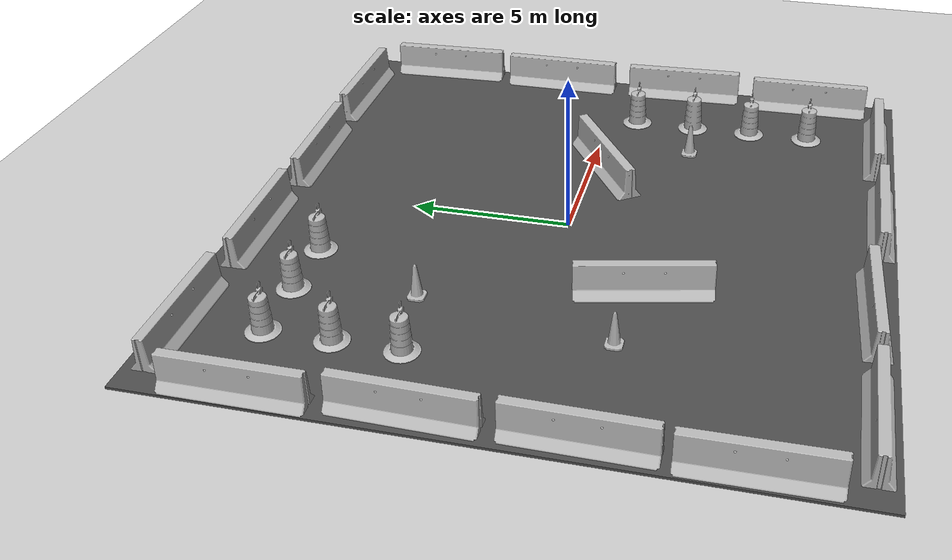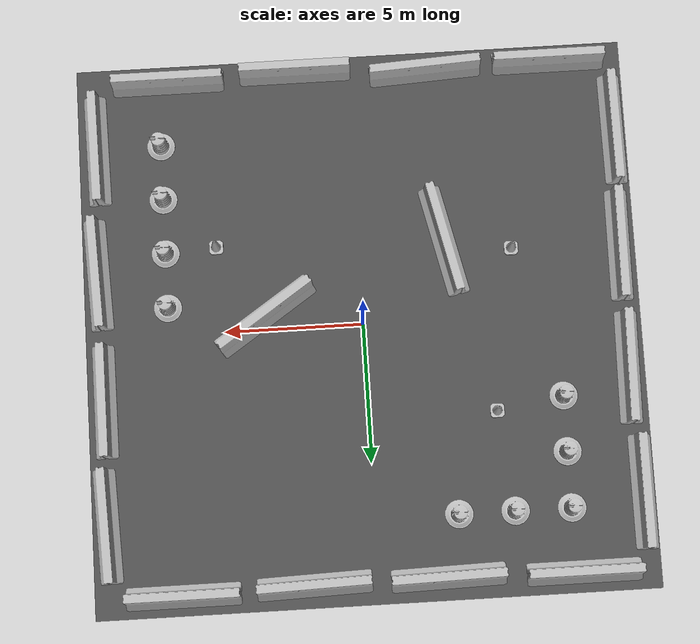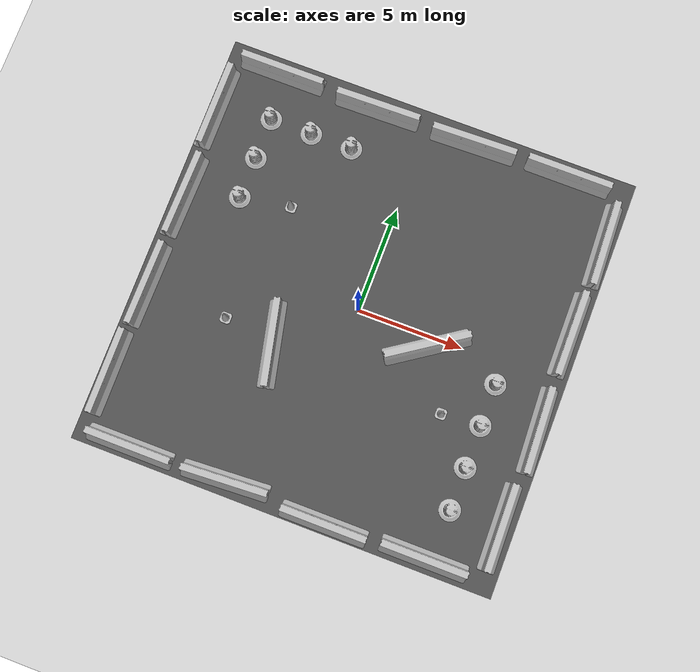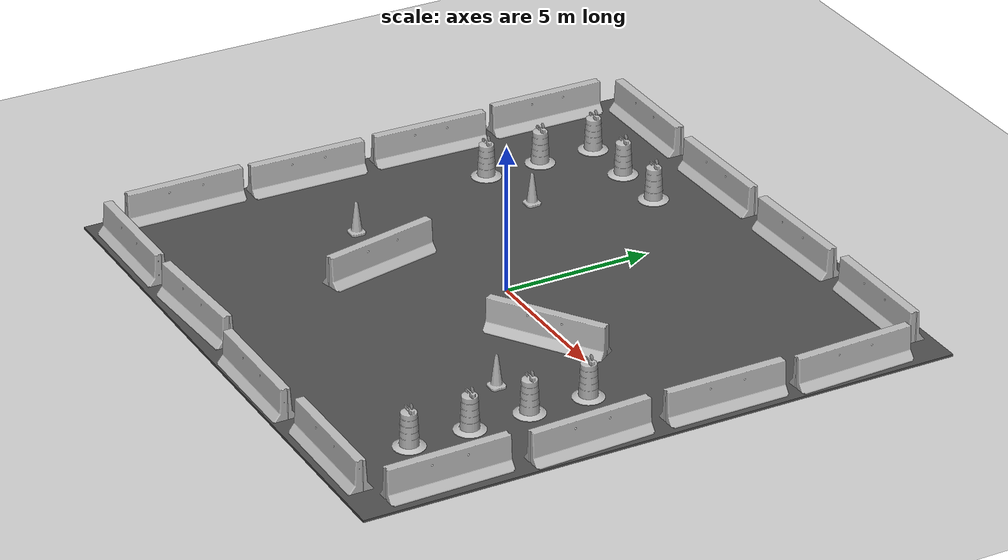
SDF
<sdf version="1.7">
 <world name="default">
  <light name="sun" type="directional">
   <pose>0 0 10 0 -0 0</pose>
   <diffuse>0.8 0.8 0.8 1</diffuse>
   <specular>0.2 0.2 0.2 1</specular>
   <attenuation>
    <range>1000</range>
    <constant>0.9</constant>
    <linear>0.01</linear>
    <quadratic>0.001</quadratic>
   </attenuation>
   <direction>-0.5 0.1 -0.9</direction>
   <spot><inner_angle>0</inner_angle><outer_angle>0</outer_angle><falloff>0</falloff></spot>
  </light>
  <model name="ground_plane">
   <static>1</static>
   <link name="link">
    <collision name="collision">
     <geometry><plane><normal>0 0 1</normal><size>100 100</size></plane></geometry>
     <surface>
      <contact><collide_bitmask>65535</collide_bitmask></contact>
      <friction><ode><mu>100</mu><mu2>50</mu2></ode></friction>
     </surface>
    </collision>
    <visual name="visual">
     <cast_shadows>0</cast_shadows>
     <geometry><plane><normal>0 0 1</normal><size>100 100</size></plane></geometry>
     <material>
      <script><uri>file://media/materials/scripts/gazebo.material</uri><name>Gazebo/Grey</name></script>
     </material>
    </visual>
   </link>
  </model>
  <gravity>0 0 -9.8</gravity>
  <magnetic_field>6e-06 2.3e-05 -4.2e-05</magnetic_field>
  <atmosphere type="adiabatic"/>
  <physics type="ode">
   <max_step_size>0.001</max_step_size>
   <real_time_factor>1</real_time_factor>
   <real_time_update_rate>1000</real_time_update_rate>
  </physics>
  <scene><ambient>0.4 0.4 0.4 1</ambient><background>0.7 0.7 0.7 1</background><shadows>1</shadows></scene>
  <spherical_coordinates>
   <surface_model>EARTH_WGS84</surface_model>
   <latitude_deg>0</latitude_deg>
   <longitude_deg>0</longitude_deg>
   <elevation>0</elevation>
   <heading_deg>0</heading_deg>
  </spherical_coordinates>
  <model name="asphalt_plane">
   <static>1</static>
   <link name="link">
    <collision name="collision"><geometry><box><size>20 20 0.1</size></box></geometry></collision>
    <visual name="visual">
     <cast_shadows>0</cast_shadows>
     <geometry><box><size>20 20 0.1</size></box></geometry>
     <material>
      <script>
       <uri>model://asphalt_plane/materials/scripts</uri>
       <uri>model://asphalt_plane/materials/textures</uri>
       <name>vrc/asphalt</name>
      </script>
     </material>
    </visual>
   </link>
  </model>
  <model name="Construction Barrel">
   <link name="link">
    <inertial>
     <pose>0 0 0.4 0 -0 0</pose>
     <mass>500</mass>
     <inertia><ixx>51.2096</ixx><iyy>51.2096</iyy><izz>25</izz><ixy>0</ixy><ixz>0</ixz><iyz>0</iyz></inertia>
    </inertial>
    <collision name="collision">
     <geometry><mesh><uri>model://construction_barrel/meshes/construction_barrel.dae</uri></mesh></geometry>
    </collision>
    <visual name="visual">
     <geometry><mesh><uri>model://construction_barrel/meshes/construction_barrel.dae</uri></mesh></geometry>
    </visual>
   </link>
   <pose>-7.00838 7.00471 0.05 0 -0 0.007974</pose>
  </model>
  <model name="Construction Barrel_0">
   <link name="link">
    <inertial>
     <pose>0 0 0.4 0 -0 0</pose>
     <mass>500</mass>
     <inertia><ixx>51.2096</ixx><iyy>51.2096</iyy><izz>25</izz><ixy>0</ixy><ixz>0</ixz><iyz>0</iyz></inertia>
    </inertial>
    <collision name="collision">
     <geometry><mesh><uri>model://construction_barrel/meshes/construction_barrel.dae</uri></mesh></geometry>
    </collision>
    <visual name="visual">
     <geometry><mesh><uri>model://construction_barrel/meshes/construction_barrel.dae</uri></mesh></geometry>
    </visual>
   </link>
   <pose>-4.99969 7.00097 0.049999 4e-06 -0 0.000445</pose>
  </model>
  <model name="Construction Barrel_1">
   <link name="link">
    <inertial>
     <pose>0 0 0.4 0 -0 0</pose>
     <mass>500</mass>
     <inertia><ixx>51.2096</ixx><iyy>51.2096</iyy><izz>25</izz><ixy>0</ixy><ixz>0</ixz><iyz>0</iyz></inertia>
    </inertial>
    <collision name="collision">
     <geometry><mesh><uri>model://construction_barrel/meshes/construction_barrel.dae</uri></mesh></geometry>
    </collision>
    <visual name="visual">
     <geometry><mesh><uri>model://construction_barrel/meshes/construction_barrel.dae</uri></mesh></geometry>
    </visual>
   </link>
   <pose>-2.99884 7.00023 0.049999 -1e-06 -2e-06 0.000576</pose>
  </model>
  <model name="Construction Barrel_2">
   <link name="link">
    <inertial>
     <pose>0 0 0.4 0 -0 0</pose>
     <mass>500</mass>
     <inertia><ixx>51.2096</ixx><iyy>51.2096</iyy><izz>25</izz><ixy>0</ixy><ixz>0</ixz><iyz>0</iyz></inertia>
    </inertial>
    <collision name="collision">
     <geometry><mesh><uri>model://construction_barrel/meshes/construction_barrel.dae</uri></mesh></geometry>
    </collision>
    <visual name="visual">
     <geometry><mesh><uri>model://construction_barrel/meshes/construction_barrel.dae</uri></mesh></geometry>
    </visual>
   </link>
   <pose>-6.99968 5.00023 0.05 0 -0 0.000794</pose>
  </model>
  <model name="Construction Barrel_3">
   <link name="link">
    <inertial>
     <pose>0 0 0.4 0 -0 0</pose>
     <mass>500</mass>
     <inertia><ixx>51.2096</ixx><iyy>51.2096</iyy><izz>25</izz><ixy>0</ixy><ixz>0</ixz><iyz>0</iyz></inertia>
    </inertial>
    <collision name="collision">
     <geometry><mesh><uri>model://construction_barrel/meshes/construction_barrel.dae</uri></mesh></geometry>
    </collision>
    <visual name="visual">
     <geometry><mesh><uri>model://construction_barrel/meshes/construction_barrel.dae</uri></mesh></geometry>
    </visual>
   </link>
   <pose>-7.00875 2.99945 0.049999 -2e-06 -3e-06 0.005725</pose>
  </model>
  <model name="Construction Cone">
   <link name="link">
    <collision name="collision">
     <geometry>
      <mesh><scale>10 10 10</scale><uri>model://construction_cone/meshes/construction_cone.dae</uri></mesh>
     </geometry>
    </collision>
    <visual name="visual">
     <geometry>
      <mesh><scale>10 10 10</scale><uri>model://construction_cone/meshes/construction_cone.dae</uri></mesh>
     </geometry>
    </visual>
    <inertial>
     <inertia><ixx>1</ixx><ixy>0</ixy><ixz>0</ixz><iyy>1</iyy><iyz>0</iyz><izz>1</izz></inertia>
     <mass>1</mass>
    </inertial>
   </link>
   <pose>-4.60699 3.39982 0.05 -1e-06 -0 -0</pose>
  </model>
  <model name="Construction Cone_0">
   <link name="link">
    <collision name="collision">
     <geometry>
      <mesh><scale>10 10 10</scale><uri>model://construction_cone/meshes/construction_cone.dae</uri></mesh>
     </geometry>
    </collision>
    <visual name="visual">
     <geometry>
      <mesh><scale>10 10 10</scale><uri>model://construction_cone/meshes/construction_cone.dae</uri></mesh>
     </geometry>
    </visual>
    <inertial>
     <inertia><ixx>1</ixx><ixy>0</ixy><ixz>0</ixz><iyy>1</iyy><iyz>0</iyz><izz>1</izz></inertia>
     <mass>1</mass>
    </inertial>
   </link>
   <pose>-5.51374 -2.4831 0.050001 -3e-06 -1e-06 -0</pose>
  </model>
  <model name="Construction Cone_1">
   <link name="link">
    <collision name="collision">
     <geometry>
      <mesh><scale>10 10 10</scale><uri>model://construction_cone/meshes/construction_cone.dae</uri></mesh>
     </geometry>
    </collision>
    <visual name="visual">
     <geometry>
      <mesh><scale>10 10 10</scale><uri>model://construction_cone/meshes/construction_cone.dae</uri></mesh>
     </geometry>
    </visual>
    <inertial>
     <inertia><ixx>1</ixx><ixy>0</ixy><ixz>0</ixz><iyy>1</iyy><iyz>0</iyz><izz>1</izz></inertia>
     <mass>1</mass>
    </inertial>
   </link>
   <pose>5.15815 -3.12227 0.05 0 -0 0</pose>
  </model>
  <model name="jersey_barrier">
   <static>1</static>
   <link name="link">
    <visual name="visual">
     <geometry><mesh><uri>model://jersey_barrier/meshes/jersey_barrier.dae</uri></mesh></geometry>
    </visual>
    <collision name="upright">
     <pose>0 0 0.5715 0 -0 0</pose>
     <geometry><box><size>4.06542 0.3063 1.143</size></box></geometry>
    </collision>
    <collision name="base">
     <pose>0 0 0.032258 0 -0 0</pose>
     <geometry><box><size>4.06542 0.8107 0.064516</size></box></geometry>
    </collision>
    <collision name="base2">
     <pose>0 0 0.1 0 -0 0</pose>
     <geometry><box><size>4.06542 0.65 0.1</size></box></geometry>
    </collision>
    <collision name="base3">
     <pose>0 0 0.2 0 -0 0</pose>
     <geometry><box><size>4.06542 0.5 0.1</size></box></geometry>
    </collision>
    <collision name="left-angle">
     <pose>0 -0.224 0.2401 0.9 -0 0</pose>
     <geometry><box><size>4.06542 0.5 0.064516</size></box></geometry>
    </collision>
    <collision name="right-angle">
     <pose>0 0.224 0.2401 -0.9 0 0</pose>
     <geometry><box><size>4.06542 0.5 0.064516</size></box></geometry>
    </collision>
   </link>
   <pose>-7.26503 9.276 0 0 -0 0</pose>
  </model>
  <model name="jersey_barrier_0">
   <static>1</static>
   <link name="link">
    <visual name="visual">
     <geometry><mesh><uri>model://jersey_barrier/meshes/jersey_barrier.dae</uri></mesh></geometry>
    </visual>
    <collision name="upright">
     <pose>0 0 0.5715 0 -0 0</pose>
     <geometry><box><size>4.06542 0.3063 1.143</size></box></geometry>
    </collision>
    <collision name="base">
     <pose>0 0 0.032258 0 -0 0</pose>
     <geometry><box><size>4.06542 0.8107 0.064516</size></box></geometry>
    </collision>
    <collision name="base2">
     <pose>0 0 0.1 0 -0 0</pose>
     <geometry><box><size>4.06542 0.65 0.1</size></box></geometry>
    </collision>
    <collision name="base3">
     <pose>0 0 0.2 0 -0 0</pose>
     <geometry><box><size>4.06542 0.5 0.1</size></box></geometry>
    </collision>
    <collision name="left-angle">
     <pose>0 -0.224 0.2401 0.9 -0 0</pose>
     <geometry><box><size>4.06542 0.5 0.064516</size></box></geometry>
    </collision>
    <collision name="right-angle">
     <pose>0 0.224 0.2401 -0.9 0 0</pose>
     <geometry><box><size>4.06542 0.5 0.064516</size></box></geometry>
    </collision>
   </link>
   <pose>-2.48007 9.18909 0 0 -0 0.019586</pose>
  </model>
  <model name="jersey_barrier_1">
   <static>1</static>
   <link name="link">
    <visual name="visual">
     <geometry><mesh><uri>model://jersey_barrier/meshes/jersey_barrier.dae</uri></mesh></geometry>
    </visual>
    <collision name="upright">
     <pose>0 0 0.5715 0 -0 0</pose>
     <geometry><box><size>4.06542 0.3063 1.143</size></box></geometry>
    </collision>
    <collision name="base">
     <pose>0 0 0.032258 0 -0 0</pose>
     <geometry><box><size>4.06542 0.8107 0.064516</size></box></geometry>
    </collision>
    <collision name="base2">
     <pose>0 0 0.1 0 -0 0</pose>
     <geometry><box><size>4.06542 0.65 0.1</size></box></geometry>
    </collision>
    <collision name="base3">
     <pose>0 0 0.2 0 -0 0</pose>
     <geometry><box><size>4.06542 0.5 0.1</size></box></geometry>
    </collision>
    <collision name="left-angle">
     <pose>0 -0.224 0.2401 0.9 -0 0</pose>
     <geometry><box><size>4.06542 0.5 0.064516</size></box></geometry>
    </collision>
    <collision name="right-angle">
     <pose>0 0.224 0.2401 -0.9 0 0</pose>
     <geometry><box><size>4.06542 0.5 0.064516</size></box></geometry>
    </collision>
   </link>
   <pose>2.24313 9.19524 0 0 -0 0.027384</pose>
  </model>
  <model name="jersey_barrier_2">
   <static>1</static>
   <link name="link">
    <visual name="visual">
     <geometry><mesh><uri>model://jersey_barrier/meshes/jersey_barrier.dae</uri></mesh></geometry>
    </visual>
    <collision name="upright">
     <pose>0 0 0.5715 0 -0 0</pose>
     <geometry><box><size>4.06542 0.3063 1.143</size></box></geometry>
    </collision>
    <collision name="base">
     <pose>0 0 0.032258 0 -0 0</pose>
     <geometry><box><size>4.06542 0.8107 0.064516</size></box></geometry>
    </collision>
    <collision name="base2">
     <pose>0 0 0.1 0 -0 0</pose>
     <geometry><box><size>4.06542 0.65 0.1</size></box></geometry>
    </collision>
    <collision name="base3">
     <pose>0 0 0.2 0 -0 0</pose>
     <geometry><box><size>4.06542 0.5 0.1</size></box></geometry>
    </collision>
    <collision name="left-angle">
     <pose>0 -0.224 0.2401 0.9 -0 0</pose>
     <geometry><box><size>4.06542 0.5 0.064516</size></box></geometry>
    </collision>
    <collision name="right-angle">
     <pose>0 0.224 0.2401 -0.9 0 0</pose>
     <geometry><box><size>4.06542 0.5 0.064516</size></box></geometry>
    </collision>
   </link>
   <pose>6.85877 9.30855 0 0 -0 0</pose>
  </model>
  <model name="jersey_barrier_3">
   <static>1</static>
   <link name="link">
    <visual name="visual">
     <geometry><mesh><uri>model://jersey_barrier/meshes/jersey_barrier.dae</uri></mesh></geometry>
    </visual>
    <collision name="upright">
     <pose>0 0 0.5715 0 -0 0</pose>
     <geometry><box><size>4.06542 0.3063 1.143</size></box></geometry>
    </collision>
    <collision name="base">
     <pose>0 0 0.032258 0 -0 0</pose>
     <geometry><box><size>4.06542 0.8107 0.064516</size></box></geometry>
    </collision>
    <collision name="base2">
     <pose>0 0 0.1 0 -0 0</pose>
     <geometry><box><size>4.06542 0.65 0.1</size></box></geometry>
    </collision>
    <collision name="base3">
     <pose>0 0 0.2 0 -0 0</pose>
     <geometry><box><size>4.06542 0.5 0.1</size></box></geometry>
    </collision>
    <collision name="left-angle">
     <pose>0 -0.224 0.2401 0.9 -0 0</pose>
     <geometry><box><size>4.06542 0.5 0.064516</size></box></geometry>
    </collision>
    <collision name="right-angle">
     <pose>0 0.224 0.2401 -0.9 0 0</pose>
     <geometry><box><size>4.06542 0.5 0.064516</size></box></geometry>
    </collision>
   </link>
   <pose>-7.33435 -9.40905 0 0 -0 0</pose>
  </model>
  <model name="jersey_barrier_4">
   <static>1</static>
   <link name="link">
    <visual name="visual">
     <geometry><mesh><uri>model://jersey_barrier/meshes/jersey_barrier.dae</uri></mesh></geometry>
    </visual>
    <collision name="upright">
     <pose>0 0 0.5715 0 -0 0</pose>
     <geometry><box><size>4.06542 0.3063 1.143</size></box></geometry>
    </collision>
    <collision name="base">
     <pose>0 0 0.032258 0 -0 0</pose>
     <geometry><box><size>4.06542 0.8107 0.064516</size></box></geometry>
    </collision>
    <collision name="base2">
     <pose>0 0 0.1 0 -0 0</pose>
     <geometry><box><size>4.06542 0.65 0.1</size></box></geometry>
    </collision>
    <collision name="base3">
     <pose>0 0 0.2 0 -0 0</pose>
     <geometry><box><size>4.06542 0.5 0.1</size></box></geometry>
    </collision>
    <collision name="left-angle">
     <pose>0 -0.224 0.2401 0.9 -0 0</pose>
     <geometry><box><size>4.06542 0.5 0.064516</size></box></geometry>
    </collision>
    <collision name="right-angle">
     <pose>0 0.224 0.2401 -0.9 0 0</pose>
     <geometry><box><size>4.06542 0.5 0.064516</size></box></geometry>
    </collision>
   </link>
   <pose>-2.78805 -9.30705 0 0 -0 0.054466</pose>
  </model>
  <model name="jersey_barrier_5">
   <static>1</static>
   <link name="link">
    <visual name="visual">
     <geometry><mesh><uri>model://jersey_barrier/meshes/jersey_barrier.dae</uri></mesh></geometry>
    </visual>
    <collision name="upright">
     <pose>0 0 0.5715 0 -0 0</pose>
     <geometry><box><size>4.06542 0.3063 1.143</size></box></geometry>
    </collision>
    <collision name="base">
     <pose>0 0 0.032258 0 -0 0</pose>
     <geometry><box><size>4.06542 0.8107 0.064516</size></box></geometry>
    </collision>
    <collision name="base2">
     <pose>0 0 0.1 0 -0 0</pose>
     <geometry><box><size>4.06542 0.65 0.1</size></box></geometry>
    </collision>
    <collision name="base3">
     <pose>0 0 0.2 0 -0 0</pose>
     <geometry><box><size>4.06542 0.5 0.1</size></box></geometry>
    </collision>
    <collision name="left-angle">
     <pose>0 -0.224 0.2401 0.9 -0 0</pose>
     <geometry><box><size>4.06542 0.5 0.064516</size></box></geometry>
    </collision>
    <collision name="right-angle">
     <pose>0 0.224 0.2401 -0.9 0 0</pose>
     <geometry><box><size>4.06542 0.5 0.064516</size></box></geometry>
    </collision>
   </link>
   <pose>1.971 -9.53265 0 0 -0 0</pose>
  </model>
  <model name="jersey_barrier_6">
   <static>1</static>
   <link name="link">
    <visual name="visual">
     <geometry><mesh><uri>model://jersey_barrier/meshes/jersey_barrier.dae</uri></mesh></geometry>
    </visual>
    <collision name="upright">
     <pose>0 0 0.5715 0 -0 0</pose>
     <geometry><box><size>4.06542 0.3063 1.143</size></box></geometry>
    </collision>
    <collision name="base">
     <pose>0 0 0.032258 0 -0 0</pose>
     <geometry><box><size>4.06542 0.8107 0.064516</size></box></geometry>
    </collision>
    <collision name="base2">
     <pose>0 0 0.1 0 -0 0</pose>
     <geometry><box><size>4.06542 0.65 0.1</size></box></geometry>
    </collision>
    <collision name="base3">
     <pose>0 0 0.2 0 -0 0</pose>
     <geometry><box><size>4.06542 0.5 0.1</size></box></geometry>
    </collision>
    <collision name="left-angle">
     <pose>0 -0.224 0.2401 0.9 -0 0</pose>
     <geometry><box><size>4.06542 0.5 0.064516</size></box></geometry>
    </collision>
    <collision name="right-angle">
     <pose>0 0.224 0.2401 -0.9 0 0</pose>
     <geometry><box><size>4.06542 0.5 0.064516</size></box></geometry>
    </collision>
   </link>
   <pose>6.6292 -9.37845 0 0 -0 0</pose>
  </model>
  <model name="jersey_barrier_7">
   <static>1</static>
   <link name="link">
    <visual name="visual">
     <geometry><mesh><uri>model://jersey_barrier/meshes/jersey_barrier.dae</uri></mesh></geometry>
    </visual>
    <collision name="upright">
     <pose>0 0 0.5715 0 -0 0</pose>
     <geometry><box><size>4.06542 0.3063 1.143</size></box></geometry>
    </collision>
    <collision name="base">
     <pose>0 0 0.032258 0 -0 0</pose>
     <geometry><box><size>4.06542 0.8107 0.064516</size></box></geometry>
    </collision>
    <collision name="base2">
     <pose>0 0 0.1 0 -0 0</pose>
     <geometry><box><size>4.06542 0.65 0.1</size></box></geometry>
    </collision>
    <collision name="base3">
     <pose>0 0 0.2 0 -0 0</pose>
     <geometry><box><size>4.06542 0.5 0.1</size></box></geometry>
    </collision>
    <collision name="left-angle">
     <pose>0 -0.224 0.2401 0.9 -0 0</pose>
     <geometry><box><size>4.06542 0.5 0.064516</size></box></geometry>
    </collision>
    <collision name="right-angle">
     <pose>0 0.224 0.2401 -0.9 0 0</pose>
     <geometry><box><size>4.06542 0.5 0.064516</size></box></geometry>
    </collision>
   </link>
   <pose>-9.57251 6.59267 0 0 -0 1.57</pose>
  </model>
  <model name="Construction Barrel_4">
   <link name="link">
    <inertial>
     <pose>0 0 0.4 0 -0 0</pose>
     <mass>500</mass>
     <inertia><ixx>51.2096</ixx><iyy>51.2096</iyy><izz>25</izz><ixy>0</ixy><ixz>0</ixz><iyz>0</iyz></inertia>
    </inertial>
    <collision name="collision">
     <geometry><mesh><uri>model://construction_barrel/meshes/construction_barrel.dae</uri></mesh></geometry>
    </collision>
    <visual name="visual">
     <geometry><mesh><uri>model://construction_barrel/meshes/construction_barrel.dae</uri></mesh></geometry>
    </visual>
   </link>
   <pose>7.00022 -7.00121 0.049999 -1e-06 -2e-06 -0.001417</pose>
  </model>
  <model name="Construction Barrel_5">
   <link name="link">
    <inertial>
     <pose>0 0 0.4 0 -0 0</pose>
     <mass>500</mass>
     <inertia><ixx>51.2096</ixx><iyy>51.2096</iyy><izz>25</izz><ixy>0</ixy><ixz>0</ixz><iyz>0</iyz></inertia>
    </inertial>
    <collision name="collision">
     <geometry><mesh><uri>model://construction_barrel/meshes/construction_barrel.dae</uri></mesh></geometry>
    </collision>
    <visual name="visual">
     <geometry><mesh><uri>model://construction_barrel/meshes/construction_barrel.dae</uri></mesh></geometry>
    </visual>
   </link>
   <pose>7.00023 -4.99897 0.049999 4e-06 -0 0.000313</pose>
  </model>
  <model name="Construction Barrel_6">
   <link name="link">
    <inertial>
     <pose>0 0 0.4 0 -0 0</pose>
     <mass>500</mass>
     <inertia><ixx>51.2096</ixx><iyy>51.2096</iyy><izz>25</izz><ixy>0</ixy><ixz>0</ixz><iyz>0</iyz></inertia>
    </inertial>
    <collision name="collision">
     <geometry><mesh><uri>model://construction_barrel/meshes/construction_barrel.dae</uri></mesh></geometry>
    </collision>
    <visual name="visual">
     <geometry><mesh><uri>model://construction_barrel/meshes/construction_barrel.dae</uri></mesh></geometry>
    </visual>
   </link>
   <pose>7.00023 -2.99908 0.049999 4e-06 -0 0.000435</pose>
  </model>
  <model name="Construction Barrel_7">
   <link name="link">
    <inertial>
     <pose>0 0 0.4 0 -0 0</pose>
     <mass>500</mass>
     <inertia><ixx>51.2096</ixx><iyy>51.2096</iyy><izz>25</izz><ixy>0</ixy><ixz>0</ixz><iyz>0</iyz></inertia>
    </inertial>
    <collision name="collision">
     <geometry><mesh><uri>model://construction_barrel/meshes/construction_barrel.dae</uri></mesh></geometry>
    </collision>
    <visual name="visual">
     <geometry><mesh><uri>model://construction_barrel/meshes/construction_barrel.dae</uri></mesh></geometry>
    </visual>
   </link>
   <pose>7.00023 -0.999825 0.049999 -1e-06 -3e-06 0.00044</pose>
  </model>
  <model name="jersey_barrier_8">
   <static>1</static>
   <link name="link">
    <visual name="visual">
     <geometry><mesh><uri>model://jersey_barrier/meshes/jersey_barrier.dae</uri></mesh></geometry>
    </visual>
    <collision name="upright">
     <pose>0 0 0.5715 0 -0 0</pose>
     <geometry><box><size>4.06542 0.3063 1.143</size></box></geometry>
    </collision>
    <collision name="base">
     <pose>0 0 0.032258 0 -0 0</pose>
     <geometry><box><size>4.06542 0.8107 0.064516</size></box></geometry>
    </collision>
    <collision name="base2">
     <pose>0 0 0.1 0 -0 0</pose>
     <geometry><box><size>4.06542 0.65 0.1</size></box></geometry>
    </collision>
    <collision name="base3">
     <pose>0 0 0.2 0 -0 0</pose>
     <geometry><box><size>4.06542 0.5 0.1</size></box></geometry>
    </collision>
    <collision name="left-angle">
     <pose>0 -0.224 0.2401 0.9 -0 0</pose>
     <geometry><box><size>4.06542 0.5 0.064516</size></box></geometry>
    </collision>
    <collision name="right-angle">
     <pose>0 0.224 0.2401 -0.9 0 0</pose>
     <geometry><box><size>4.06542 0.5 0.064516</size></box></geometry>
    </collision>
   </link>
   <pose>-3.09873 -2.87449 0 0 -0 1.7912</pose>
  </model>
  <model name="jersey_barrier_9">
   <static>1</static>
   <link name="link">
    <visual name="visual">
     <geometry><mesh><uri>model://jersey_barrier/meshes/jersey_barrier.dae</uri></mesh></geometry>
    </visual>
    <collision name="upright">
     <pose>0 0 0.5715 0 -0 0</pose>
     <geometry><box><size>4.06542 0.3063 1.143</size></box></geometry>
    </collision>
    <collision name="base">
     <pose>0 0 0.032258 0 -0 0</pose>
     <geometry><box><size>4.06542 0.8107 0.064516</size></box></geometry>
    </collision>
    <collision name="base2">
     <pose>0 0 0.1 0 -0 0</pose>
     <geometry><box><size>4.06542 0.65 0.1</size></box></geometry>
    </collision>
    <collision name="base3">
     <pose>0 0 0.2 0 -0 0</pose>
     <geometry><box><size>4.06542 0.5 0.1</size></box></geometry>
    </collision>
    <collision name="left-angle">
     <pose>0 -0.224 0.2401 0.9 -0 0</pose>
     <geometry><box><size>4.06542 0.5 0.064516</size></box></geometry>
    </collision>
    <collision name="right-angle">
     <pose>0 0.224 0.2401 -0.9 0 0</pose>
     <geometry><box><size>4.06542 0.5 0.064516</size></box></geometry>
    </collision>
   </link>
   <pose>3.51112 -0.500796 0 0 -0 0.594606</pose>
  </model>
  <model name="jersey_barrier_10">
   <static>1</static>
   <link name="link">
    <visual name="visual">
     <geometry><mesh><uri>model://jersey_barrier/meshes/jersey_barrier.dae</uri></mesh></geometry>
    </visual>
    <collision name="upright">
     <pose>0 0 0.5715 0 -0 0</pose>
     <geometry><box><size>4.06542 0.3063 1.143</size></box></geometry>
    </collision>
    <collision name="base">
     <pose>0 0 0.032258 0 -0 0</pose>
     <geometry><box><size>4.06542 0.8107 0.064516</size></box></geometry>
    </collision>
    <collision name="base2">
     <pose>0 0 0.1 0 -0 0</pose>
     <geometry><box><size>4.06542 0.65 0.1</size></box></geometry>
    </collision>
    <collision name="base3">
     <pose>0 0 0.2 0 -0 0</pose>
     <geometry><box><size>4.06542 0.5 0.1</size></box></geometry>
    </collision>
    <collision name="left-angle">
     <pose>0 -0.224 0.2401 0.9 -0 0</pose>
     <geometry><box><size>4.06542 0.5 0.064516</size></box></geometry>
    </collision>
    <collision name="right-angle">
     <pose>0 0.224 0.2401 -0.9 0 0</pose>
     <geometry><box><size>4.06542 0.5 0.064516</size></box></geometry>
    </collision>
   </link>
   <pose>-9.40805 2.12992 -0 0 -0 1.5506</pose>
  </model>
  <model name="jersey_barrier_11">
   <static>1</static>
   <link name="link">
    <visual name="visual">
     <geometry><mesh><uri>model://jersey_barrier/meshes/jersey_barrier.dae</uri></mesh></geometry>
    </visual>
    <collision name="upright">
     <pose>0 0 0.5715 0 -0 0</pose>
     <geometry><box><size>4.06542 0.3063 1.143</size></box></geometry>
    </collision>
    <collision name="base">
     <pose>0 0 0.032258 0 -0 0</pose>
     <geometry><box><size>4.06542 0.8107 0.064516</size></box></geometry>
    </collision>
    <collision name="base2">
     <pose>0 0 0.1 0 -0 0</pose>
     <geometry><box><size>4.06542 0.65 0.1</size></box></geometry>
    </collision>
    <collision name="base3">
     <pose>0 0 0.2 0 -0 0</pose>
     <geometry><box><size>4.06542 0.5 0.1</size></box></geometry>
    </collision>
    <collision name="left-angle">
     <pose>0 -0.224 0.2401 0.9 -0 0</pose>
     <geometry><box><size>4.06542 0.5 0.064516</size></box></geometry>
    </collision>
    <collision name="right-angle">
     <pose>0 0.224 0.2401 -0.9 0 0</pose>
     <geometry><box><size>4.06542 0.5 0.064516</size></box></geometry>
    </collision>
   </link>
   <pose>-9.53608 -6.6625 0 0 -0 1.57757</pose>
  </model>
  <model name="jersey_barrier_12">
   <static>1</static>
   <link name="link">
    <visual name="visual">
     <geometry><mesh><uri>model://jersey_barrier/meshes/jersey_barrier.dae</uri></mesh></geometry>
    </visual>
    <collision name="upright">
     <pose>0 0 0.5715 0 -0 0</pose>
     <geometry><box><size>4.06542 0.3063 1.143</size></box></geometry>
    </collision>
    <collision name="base">
     <pose>0 0 0.032258 0 -0 0</pose>
     <geometry><box><size>4.06542 0.8107 0.064516</size></box></geometry>
    </collision>
    <collision name="base2">
     <pose>0 0 0.1 0 -0 0</pose>
     <geometry><box><size>4.06542 0.65 0.1</size></box></geometry>
    </collision>
    <collision name="base3">
     <pose>0 0 0.2 0 -0 0</pose>
     <geometry><box><size>4.06542 0.5 0.1</size></box></geometry>
    </collision>
    <collision name="left-angle">
     <pose>0 -0.224 0.2401 0.9 -0 0</pose>
     <geometry><box><size>4.06542 0.5 0.064516</size></box></geometry>
    </collision>
    <collision name="right-angle">
     <pose>0 0.224 0.2401 -0.9 0 0</pose>
     <geometry><box><size>4.06542 0.5 0.064516</size></box></geometry>
    </collision>
   </link>
   <pose>-9.42397 -2.34463 0 0 -0 1.55953</pose>
  </model>
  <model name="jersey_barrier_13">
   <static>1</static>
   <link name="link">
    <visual name="visual">
     <geometry><mesh><uri>model://jersey_barrier/meshes/jersey_barrier.dae</uri></mesh></geometry>
    </visual>
    <collision name="upright">
     <pose>0 0 0.5715 0 -0 0</pose>
     <geometry><box><size>4.06542 0.3063 1.143</size></box></geometry>
    </collision>
    <collision name="base">
     <pose>0 0 0.032258 0 -0 0</pose>
     <geometry><box><size>4.06542 0.8107 0.064516</size></box></geometry>
    </collision>
    <collision name="base2">
     <pose>0 0 0.1 0 -0 0</pose>
     <geometry><box><size>4.06542 0.65 0.1</size></box></geometry>
    </collision>
    <collision name="base3">
     <pose>0 0 0.2 0 -0 0</pose>
     <geometry><box><size>4.06542 0.5 0.1</size></box></geometry>
    </collision>
    <collision name="left-angle">
     <pose>0 -0.224 0.2401 0.9 -0 0</pose>
     <geometry><box><size>4.06542 0.5 0.064516</size></box></geometry>
    </collision>
    <collision name="right-angle">
     <pose>0 0.224 0.2401 -0.9 0 0</pose>
     <geometry><box><size>4.06542 0.5 0.064516</size></box></geometry>
    </collision>
   </link>
   <pose>9.32578 -6.94026 0 0 -0 1.58988</pose>
  </model>
  <model name="jersey_barrier_14">
   <static>1</static>
   <link name="link">
    <visual name="visual">
     <geometry><mesh><uri>model://jersey_barrier/meshes/jersey_barrier.dae</uri></mesh></geometry>
    </visual>
    <collision name="upright">
     <pose>0 0 0.5715 0 -0 0</pose>
     <geometry><box><size>4.06542 0.3063 1.143</size></box></geometry>
    </collision>
    <collision name="base">
     <pose>0 0 0.032258 0 -0 0</pose>
     <geometry><box><size>4.06542 0.8107 0.064516</size></box></geometry>
    </collision>
    <collision name="base2">
     <pose>0 0 0.1 0 -0 0</pose>
     <geometry><box><size>4.06542 0.65 0.1</size></box></geometry>
    </collision>
    <collision name="base3">
     <pose>0 0 0.2 0 -0 0</pose>
     <geometry><box><size>4.06542 0.5 0.1</size></box></geometry>
    </collision>
    <collision name="left-angle">
     <pose>0 -0.224 0.2401 0.9 -0 0</pose>
     <geometry><box><size>4.06542 0.5 0.064516</size></box></geometry>
    </collision>
    <collision name="right-angle">
     <pose>0 0.224 0.2401 -0.9 0 0</pose>
     <geometry><box><size>4.06542 0.5 0.064516</size></box></geometry>
    </collision>
   </link>
   <pose>9.46084 -2.33173 0 0 -0 1.61517</pose>
  </model>
  <model name="jersey_barrier_15">
   <static>1</static>
   <link name="link">
    <visual name="visual">
     <geometry><mesh><uri>model://jersey_barrier/meshes/jersey_barrier.dae</uri></mesh></geometry>
    </visual>
    <collision name="upright">
     <pose>0 0 0.5715 0 -0 0</pose>
     <geometry><box><size>4.06542 0.3063 1.143</size></box></geometry>
    </collision>
    <collision name="base">
     <pose>0 0 0.032258 0 -0 0</pose>
     <geometry><box><size>4.06542 0.8107 0.064516</size></box></geometry>
    </collision>
    <collision name="base2">
     <pose>0 0 0.1 0 -0 0</pose>
     <geometry><box><size>4.06542 0.65 0.1</size></box></geometry>
    </collision>
    <collision name="base3">
     <pose>0 0 0.2 0 -0 0</pose>
     <geometry><box><size>4.06542 0.5 0.1</size></box></geometry>
    </collision>
    <collision name="left-angle">
     <pose>0 -0.224 0.2401 0.9 -0 0</pose>
     <geometry><box><size>4.06542 0.5 0.064516</size></box></geometry>
    </collision>
    <collision name="right-angle">
     <pose>0 0.224 0.2401 -0.9 0 0</pose>
     <geometry><box><size>4.06542 0.5 0.064516</size></box></geometry>
    </collision>
   </link>
   <pose>9.38144 2.28847 0 0 -0 1.57591</pose>
  </model>
  <model name="jersey_barrier_16">
   <static>1</static>
   <link name="link">
    <visual name="visual">
     <geometry><mesh><uri>model://jersey_barrier/meshes/jersey_barrier.dae</uri></mesh></geometry>
    </visual>
    <collision name="upright">
     <pose>0 0 0.5715 0 -0 0</pose>
     <geometry><box><size>4.06542 0.3063 1.143</size></box></geometry>
    </collision>
    <collision name="base">
     <pose>0 0 0.032258 0 -0 0</pose>
     <geometry><box><size>4.06542 0.8107 0.064516</size></box></geometry>
    </collision>
    <collision name="base2">
     <pose>0 0 0.1 0 -0 0</pose>
     <geometry><box><size>4.06542 0.65 0.1</size></box></geometry>
    </collision>
    <collision name="base3">
     <pose>0 0 0.2 0 -0 0</pose>
     <geometry><box><size>4.06542 0.5 0.1</size></box></geometry>
    </collision>
    <collision name="left-angle">
     <pose>0 -0.224 0.2401 0.9 -0 0</pose>
     <geometry><box><size>4.06542 0.5 0.064516</size></box></geometry>
    </collision>
    <collision name="right-angle">
     <pose>0 0.224 0.2401 -0.9 0 0</pose>
     <geometry><box><size>4.06542 0.5 0.064516</size></box></geometry>
    </collision>
   </link>
   <pose>9.44796 6.71399 0 0 -0 1.61204</pose>
  </model>
 </world>
</sdf>
